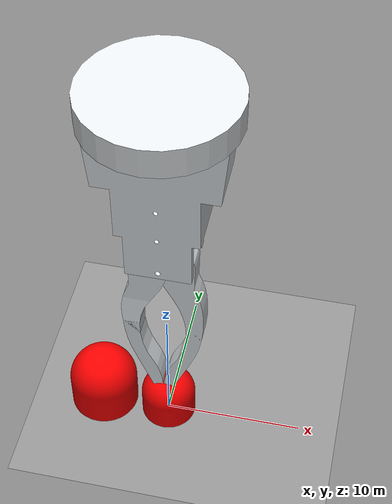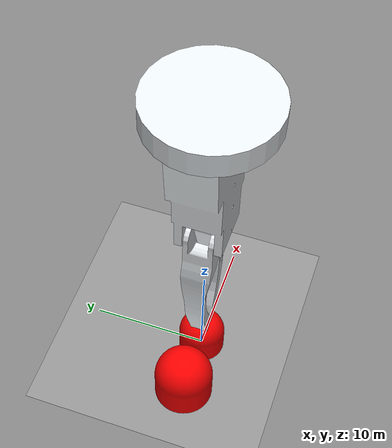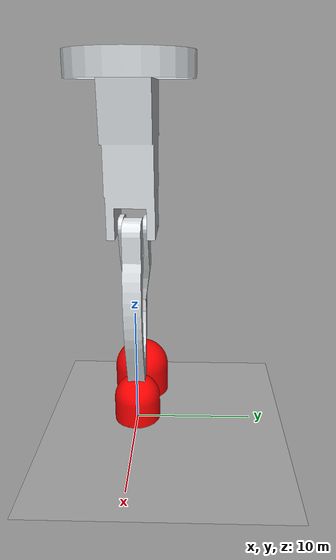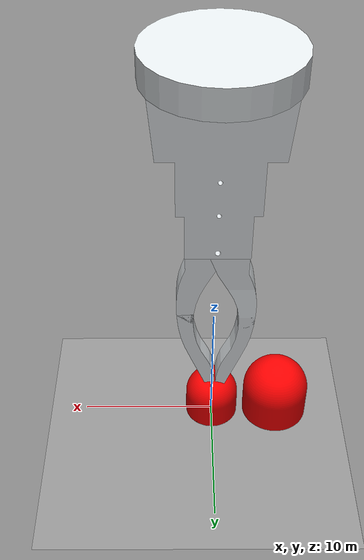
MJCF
<!--# Created by Xinchao Song on June 30, 2019.-->

<mujoco model="The 1-D Bump Model">
    <compiler angle="radian"/>

    <option>
        <flag gravity="disable"/>
    </option>

    <asset>
        <include file="gripah_asset.xml"/>
        <mesh name="mesh:small_bump" file="objects/bump_40_mujoco.STL"/>
        <mesh name="mesh:big_bump" file="objects/bump_50_mujoco.STL"/>
        <texture name="tex:floor" type="2d" builtin="checker" rgb1="1 1 1" rgb2="0 0 0" width="100" height="100"
                 mark="cross"/>
        <material name="mat:floor" reflectance="0.1" texture="tex:floor" texrepeat="60 60"/>
    </asset>

    <default>
        <joint armature="1" damping="1"/>
        <geom contype="1" condim="3" friction="1 0.1 0.1"/>

        <default class="small_bump">
            <geom type="mesh" mesh="mesh:small_bump" mass="0.25" quat="1 1 0 0"/>
        </default>

        <default class="big_bump">
            <geom type="mesh" mesh="mesh:big_bump" mass="0.5" quat="1 1 0 0"/>
        </default>

        <default class="blocker">
            <geom type="cylinder" size="1 0.5" rgba="1 1 0 0"/>
        </default>

        <default class="cube">
            <geom type="box" size="0.5 0.5 0.5" rgba="0 1 0 0.2"/>
        </default>

    </default>

    <worldbody>
        <light name="light" directional="true" diffuse="0.8 0.8 0.8" specular="0.4 0.4 0.4" pos="0 -10 20"
               dir="0 1 -1"/>
        <geom name="floor" type="plane" material="mat:floor" size="480 480 480" pos="0 0 0" rgba="0.752 0.752 0.752 1"
              quat="1 0 0 0"/>

        <include file="gripah_body.xml"/>

        <body name="small_bump" pos="0 0 0.001">
            <geom name="small_bump" rgba="1 0 0 1" class="small_bump"/>
        </body>

        <body name="big_bump" pos="-5 0 0.001">
            <geom name="big_bump" rgba="1 0 0 1" class="big_bump"/>
        </body>

        <body name="bump-lblocker" pos="-110 20 0.5">
            <geom name="geom:bump-lblocker" class="blocker"/>
        </body>
        <body name="bump-rblocker" pos="-115 20 0.5">
            <geom name="geom:bump-rblocker" class="blocker"/>
        </body>

        <site name="subgoal1" size="2" pos="0 0 0.1" rgba="0 1 0 0.5" type="sphere"/>
        <site name="subgoal2" size="2" pos="0 0 0.1" rgba="1 0 0 0.0" type="sphere"/>

        <site name="left_boundary" size="2" pos="40 0 0.5" rgba="1 1 0 0.0" type="sphere"/>
        <site name="right_boundary" size="2" pos="60 0 0.5" rgba="1 1 0 0.0" type="sphere"/>

        <include file="grid_markers.xml"/>
    </worldbody>

    <actuator>
        <velocity name="velocity:x" joint="slide:gripah-base-x" gear="1" kv="100"/>
        <velocity name="velocity:narrow-finger" joint="hinge:narrow-finger" gear="1" kv="100"/>
        <position name="position:narrow-finger" joint="hinge:narrow-finger" gear="1" kp="100"/>
    </actuator>

    <sensor>
        <framepos name="sensor:gripah-center" objtype="site" objname="gripah-center"/>
        <framepos name="sensor:wide-finger-tip" objtype="site" objname="wide-finger-tip"/>
    </sensor>
</mujoco>

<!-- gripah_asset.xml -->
<!--# Created by Xinchao Song on May 21, 2020.-->

<mujoco>
    <mesh name="mesh:wrist" file="gripah/wrist_rescaled.STL"/>
    <mesh name="mesh:wide-finger" file="gripah/wide_finger_rescaled.STL"/>
    <mesh name="mesh:wide-finger-tip" file="gripah/wide_finger_tip.STL"/>
    <mesh name="mesh:narrow-finger" file="gripah/narrow_finger_rescaled.STL"/>
    <mesh name="mesh:narrow-finger-tip" file="gripah/narrow_finger_tip.STL"/>
</mujoco>

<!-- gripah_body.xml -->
<!--# Created by Xinchao Song on May 21, 2020.-->

<mujoco>
    <body name="gripah-base" pos="0 0 30" quat="0 0.707 0 -0.707">
        <geom name="geom:gripah-base" type="cylinder" size="5 1" quat="1 0 1 0" mass="0.01"
              rgba="0.89804 0.91765 0.92941 1"/>
        <joint type="slide" name="slide:gripah-base-x" axis="0 0 -1" limited="true" range="0 100"/>

        <body name="wrist" pos="6.95 0 0" quat="1 0 0 0">
            <inertial pos="-2.0421 0 0" mass="0.18" diaginertia="1 1 1"/>
            <geom name="geom:wrist" type="mesh" mesh="mesh:wrist" rgba="0.89804 0.91765 0.92941 1"/>

            <body name="wide-finger" pos="5.5 0 0" quat="1 1 0 0">
                <inertial pos="5.6976 1.5337 -2.3122e-07" quat="0.653281 0.653281 -0.270598 -0.270598" mass="0.0000167"
                          diaginertia="1.01 1 0.99"/>
                <geom name="geom:wide-finger" type="mesh" rgba="0.89804 0.91765 0.92941 1" mesh="mesh:wide-finger"
                      contype="0" conaffinity="0"/>
                <geom name="geom:wide-finger-tip" type="mesh" rgba="0.89804 0.91765 0.92941 1"
                      mesh="mesh:wide-finger-tip"/>
                <joint name="hinge:wide-finger" pos="0 0 0" axis="0 0 1" limited="true" range="-1.0472 1.0472"
                       damping="50" stiffness="1" springref="0" ref="0"/>
                <site name="wide-finger-tip" size="0.1" pos="15 0.375 0" rgba="0 0 0 1" type="sphere"/>
            </body>

            <body name="narrow-finger" pos="5.5 0 0" quat="1 1 0 0">
                <inertial pos="5.2556 1.3896 2.3305e-05" quat="0.653281 0.653281 -0.270598 -0.270598"
                          mass="0.0000166" diaginertia="1.03 1 0.97"/>
                <geom name="geom:narrow-finger" type="mesh" rgba="0.89804 0.91765 0.92941 1" mesh="mesh:narrow-finger"
                      contype="0" conaffinity="0"/>
                <geom name="geom:narrow-finger-tip" type="mesh" rgba="0.89804 0.91765 0.92941 1"
                      mesh="mesh:narrow-finger-tip"/>
                <joint name="hinge:narrow-finger" pos="0 0 0" axis="0 0 1" limited="true" range="-1.0472 1.0472"
                       damping="50" stiffness="1" springref="0" ref="0"/>
            </body>

            <site name="gripah-center" size="0.1" pos="0 0 0" rgba="0 0 0 1" type="sphere"/>
        </body>
    </body>
</mujoco>

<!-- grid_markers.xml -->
<!--# Created by Xinchao Song on August 17, 2020.-->

<mujoco>
    <site name="grid-marker-0" size="1" pos="0 -0.011 0" rgba="1 0 1 0.5" type="sphere"/>
    <site name="grid-marker-1" size="1" pos="0 -0.012 0" rgba="1 0 1 0.5" type="sphere"/>
    <site name="grid-marker-2" size="1" pos="0 -0.013 0" rgba="1 0 1 0.5" type="sphere"/>
</mujoco>
